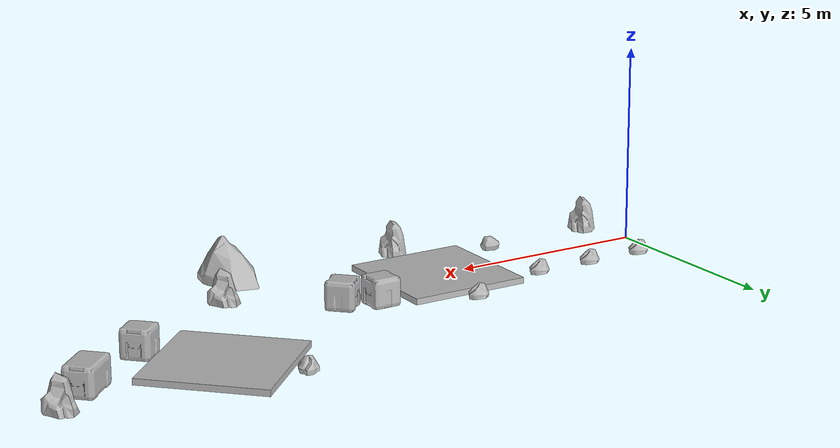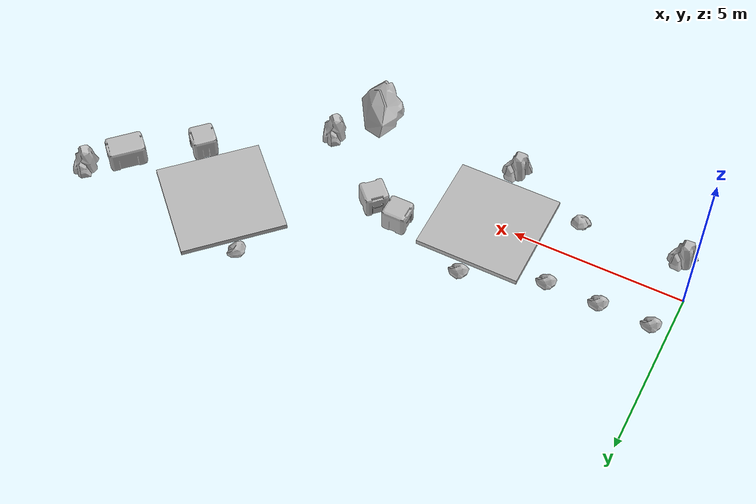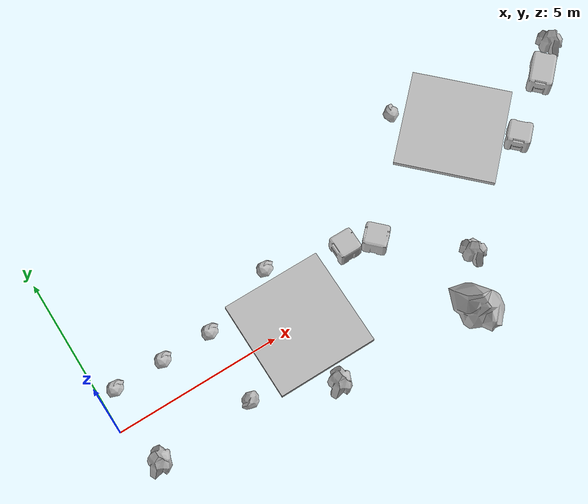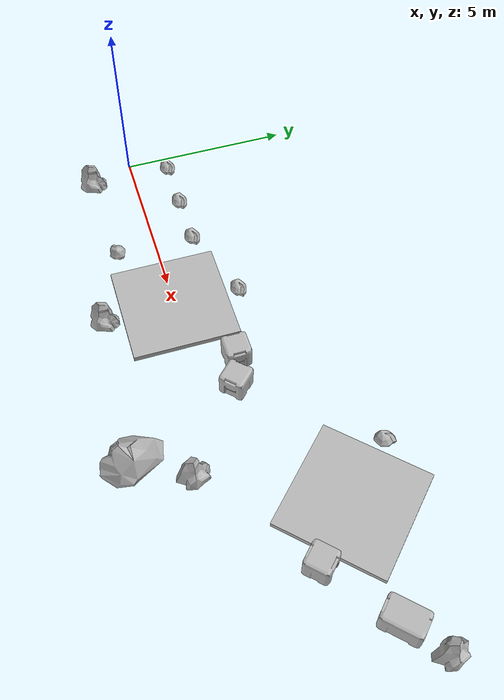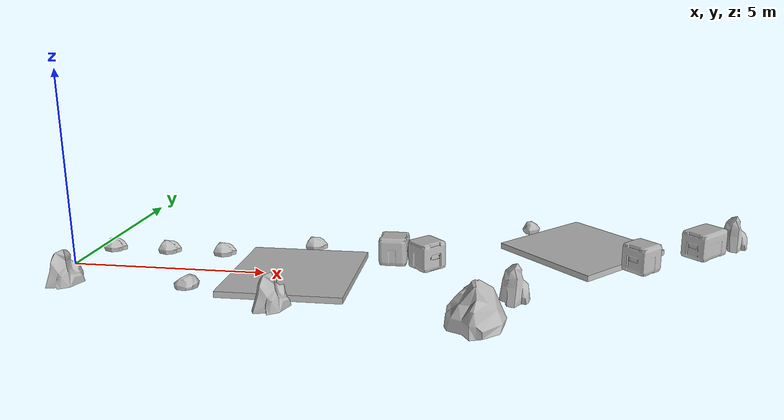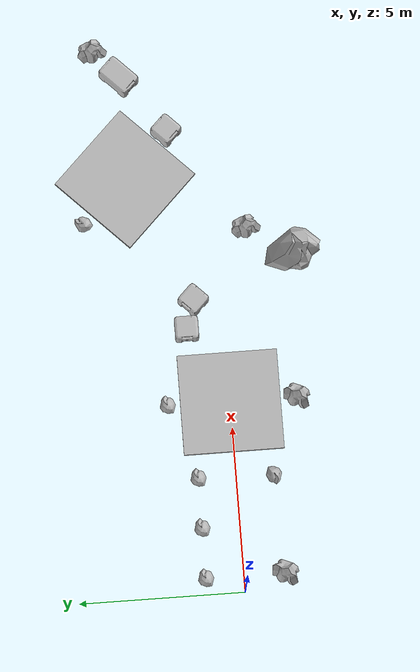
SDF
<sdf version="1.6">
 <world name="SRC_finals">
  <physics type="ode">
   <real_time_update_rate>1000.0</real_time_update_rate>
   <max_step_size>0.001</max_step_size>
   <real_time_factor>1</real_time_factor>
   <ode>
    <solver>
     <type>quick</type>
     <iters>150</iters>
     <precon_iters>0</precon_iters>
     <sor>1.400000</sor>
     <use_dynamic_moi_rescaling>1</use_dynamic_moi_rescaling>
    </solver>
    <constraints>
     <cfm>0.000000</cfm>
     <erp>0.800000</erp>
     <contact_max_correcting_vel>2000.000000</contact_max_correcting_vel>
     <contact_surface_layer>0.01000</contact_surface_layer>
    </constraints>
   </ode>
  </physics>
  <scene>
   <background>0.968627451 0.690196078 0.384313725 1.0</background>
   <grid>0</grid>
   <origin_visual>0</origin_visual>
  </scene>
  <light type="directional" name="sun">
   <pose>0 0 1000 -0.778302173166515 -0.9107552164665229 0</pose>
   <diffuse>0.8 0.8 0.8 1</diffuse>
   <specular>0.2 0.2 0.2 1</specular>
   <attenuation>
    <range>1000</range>
    <constant>0.9</constant>
    <linear>0.01</linear>
    <quadratic>0.001</quadratic>
   </attenuation>
   <direction>-0.5 0.1 -0.9</direction>
  </light>
  <include>
   <name>mars_rock_1_1</name>
   <pose>0.46200000000000024
      1.162
      0
      0
      0
      -2.4492935982947064e-16</pose>
   <uri>model://mars_rock_1</uri>
  </include>
  <include>
   <name>mars_rock_2_2</name>
   <pose>0.46199999999999986
      -1.262
      0
      0
      0
      3.141592653589793</pose>
   <uri>model://mars_rock_2</uri>
  </include>
  <plugin name="boxT1CP1" filename="libBoxContainsPlugin.so">
   <frequency>100</frequency>
   <entity>valkyrie</entity>
   <namespace>task1/checkpoint1</namespace>
   <pose>1.9859999999999998
        -0.5620000000000003
        2.5
        0
        0
        -1.5707963267948968</pose>
   <size>1 1 5</size>
  </plugin>
  <include>
   <name>mars_rock_1_3</name>
   <pose>1.9860000000000002
      1.1619999999999995
      0
      0
      0
      -2.4492935982947064e-16</pose>
   <uri>model://mars_rock_1</uri>
  </include>
  <include>
   <name>mars_rock_1_4</name>
   <pose>3.5100000000000002
      1.1619999999999995
      0
      0
      0
      -2.4492935982947064e-16</pose>
   <uri>model://mars_rock_1</uri>
  </include>
  <include>
   <name>mars_rock_1_5</name>
   <pose>3.5100000000000002
      -1.1620000000000008
      0
      0
      0
      3.141592653589793</pose>
   <uri>model://mars_rock_1</uri>
  </include>
  <include>
   <name>walkway_4</name>
   <pose>5.796
      -1.1198170331403398e-15
      -0.052151
      0
      0
      3.141592653589793</pose>
   <uri>model://walkway_finish_opposite</uri>
  </include>
  <plugin name="boxT1CP3" filename="libBoxContainsPlugin.so">
   <frequency>100</frequency>
   <entity>valkyrie</entity>
   <namespace>task1/checkpoint3</namespace>
   <pose>5.796
        -1.1198170331403398e-15
        2.5
        0
        0
        3.141592653589793</pose>
   <size>3.048 3.048 5</size>
  </plugin>
  <include>
   <name>mars_rock_1_6</name>
   <pose>5.796
      1.923999999999999
      0
      0
      0
      -2.449293598294706e-16</pose>
   <uri>model://mars_rock_1</uri>
  </include>
  <include>
   <name>mars_rock_2_7</name>
   <pose>5.796
      -2.024000000000001
      0
      0
      0
      3.141592653589793</pose>
   <uri>model://mars_rock_2</uri>
  </include>
  <include>
   <name>mars_crate_8</name>
   <pose>8.082
      1.1619999999999986
      0
      0
      0
      -2.4492935982947064e-16</pose>
   <uri>model://mars_crate</uri>
  </include>
  <include>
   <name>mars_crate_9</name>
   <pose>8.95920271247462
      0.8924427124746175
      0
      0
      0
      -0.7853981633974485</pose>
   <uri>model://mars_crate</uri>
  </include>
  <include>
   <name>mars_rock_3_10</name>
   <pose>10.476182193833502
      -2.3949182858335023
      0
      0
      0
      -2.356194490192345</pose>
   <uri>model://mars_rock_3</uri>
  </include>
  <include>
   <name>mars_rock_2_11</name>
   <pose>11.129548859649871
      -0.8930234825932757
      0
      0
      0
      -2.3561944901923453</pose>
   <uri>model://mars_rock_2</uri>
  </include>
  <include>
   <name>walkway_9</name>
   <pose>12.931256938113195
      2.6934221115848933
      -0.052151
      0
      0
      -2.3561944901923453</pose>
   <uri>model://walkway_finish_opposite</uri>
  </include>
  <plugin name="boxT2CP6" filename="libBoxContainsPlugin.so">
   <frequency>100</frequency>
   <entity>valkyrie</entity>
   <namespace>task2/checkpoint6</namespace>
   <pose>12.931256938113195
        2.6934221115848933
        2.5
        0
        0
        -2.3561944901923453</pose>
   <size>3.048 3.048 5</size>
  </plugin>
  <include>
   <name>mars_crate_12</name>
   <pose>14.291730385116113
      1.3329486645819755
      0
      0
      0
      -2.3561944901923453</pose>
   <uri>model://mars_crate</uri>
  </include>
  <include>
   <name>mars_rock_1_13</name>
   <pose>11.570783491110278
      4.053895558587811
      0
      0
      0
      0.785398163397448</pose>
   <uri>model://mars_rock_1</uri>
  </include>
  <include>
   <name>mars_rock_2_14</name>
   <pose>16.9643958554552
      3.417633684610991
      0
      0
      0
      -2.356194490192345</pose>
   <uri>model://mars_rock_2</uri>
  </include>
  <include>
   <name>mars_crate_long_15</name>
   <pose>16.08280340494306
      2.6586741621910583
      0
      0
      0
      -2.3561944901923453</pose>
   <uri>model://mars_crate_long</uri>
  </include>
  <plugin name="boxT3CP8" filename="libBoxContainsPlugin.so">
   <frequency>100</frequency>
   <entity>valkyrie</entity>
   <namespace>task3/checkpoint8</namespace>
   <pose>16.61084246486193
        4.848817809732563
        2.5
        0
        0
        2.356194490192345</pose>
   <size>3.048 3.048 5</size>
  </plugin>
  <plugin name="finals" filename="libFinalsPlugin.so">
   <task_1_timeout>180</task_1_timeout>
   <task_1_checkpoint_2_pose>1.9859999999999998
          -0.5620000000000003
          1.1
          0
          0
          -1.5707963267948968</task_1_checkpoint_2_pose>
   <task_1_checkpoint_3_pose>1.9859999999999998
          -0.5620000000000003
          1.1
          0
          0
          -1.5707963267948968</task_1_checkpoint_3_pose>
   <task_2_timeout>180</task_2_timeout>
   <task_2_checkpoint_1_pose>5.796
          -1.1198170331403398e-15
          1.1
          0
          0
          3.141592653589793</task_2_checkpoint_1_pose>
   <task_2_checkpoint_2_pose>7.32
          -1.3064532053303964e-15
          1.1
          0
          0
          -1.5707963267948968</task_2_checkpoint_2_pose>
   <task_2_checkpoint_3_pose>7.32
          -1.3064532053303964e-15
          1.1
          0
          0
          -1.5707963267948968</task_2_checkpoint_3_pose>
   <task_2_checkpoint_4_pose>7.32
          -1.3064532053303964e-15
          1.1
          0
          0
          -1.5707963267948968</task_2_checkpoint_4_pose>
   <task_2_checkpoint_5_pose>7.32
          -1.3064532053303964e-15
          1.1
          0
          0
          -1.5707963267948968</task_2_checkpoint_5_pose>
   <task_2_checkpoint_6_pose>7.32
          -1.3064532053303964e-15
          1.1
          0
          0
          -1.5707963267948968</task_2_checkpoint_6_pose>
   <task_3_timeout>180</task_3_timeout>
   <task_3_checkpoint_1_pose>12.931256938113195
          2.6934221115848933
          1.1
          0
          0
          -2.3561944901923453</task_3_checkpoint_1_pose>
   <task_3_checkpoint_2_pose>12.931256938113195
          2.6934221115848933
          1.1
          0
          0
          -2.3561944901923453</task_3_checkpoint_2_pose>
   <task_3_checkpoint_3_pose>12.931256938113195
          2.6934221115848933
          1.1
          0
          0
          -2.3561944901923453</task_3_checkpoint_3_pose>
   <task_3_checkpoint_4_pose>12.931256938113195
          2.6934221115848933
          1.1
          0
          0
          -2.3561944901923453</task_3_checkpoint_4_pose>
   <task_3_checkpoint_5_pose>12.931256938113195
          2.6934221115848933
          1.1
          0
          0
          -2.3561944901923453</task_3_checkpoint_5_pose>
   <task_3_checkpoint_6_pose>12.931256938113195
          2.6934221115848933
          1.1
          0
          0
          -2.3561944901923453</task_3_checkpoint_6_pose>
   <task_3_checkpoint_7_pose>12.931256938113195
          2.6934221115848933
          1.1
          0
          0
          -2.3561944901923453</task_3_checkpoint_7_pose>
   <task_3_checkpoint_8_pose>12.931256938113195
          2.6934221115848933
          1.1
          0
          0
          -2.3561944901923453</task_3_checkpoint_8_pose>
  </plugin>
 </world>
</sdf>

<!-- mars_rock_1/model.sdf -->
<sdf version="1.5">
  <model name="mars_rock_1">
    <static>true</static>
    <link name="link">
      <collision name="collision">
        <geometry>
          <mesh>
            <uri>model://mars_rock_1/meshes/mars_rock_1.obj</uri>
            <scale>0.03 0.03 0.03</scale>
          </mesh>
        </geometry>
      </collision>
      <visual name="visual">
        <geometry>
          <mesh>
            <uri>model://mars_rock_1/meshes/mars_rock_1.obj</uri>
            <scale>0.03 0.03 0.03</scale>
          </mesh>
        </geometry>
      </visual>
    </link>
  </model>
</sdf>

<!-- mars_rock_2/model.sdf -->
<sdf version="1.5">
  <model name="mars_rock_2">
    <static>true</static>
    <link name="link">
      <collision name="collision">
        <geometry>
          <mesh>
            <uri>model://mars_rock_2/meshes/mars_rock_2.obj</uri>
            <scale>0.03 0.03 0.03</scale>
          </mesh>
        </geometry>
      </collision>
      <visual name="visual">
        <geometry>
          <mesh>
            <uri>model://mars_rock_2/meshes/mars_rock_2.obj</uri>
            <scale>0.03 0.03 0.03</scale>
          </mesh>
        </geometry>
      </visual>
    </link>
  </model>
</sdf>

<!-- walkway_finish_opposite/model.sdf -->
<sdf version="1.5">
  <model name="walkway_finish_opposite">
    <static>true</static>
    <link name="link">
      <collision name="collision">
        <pose>0 0 0.076075 0 0 0</pose>
        <geometry>
          <box>
            <size>3.048 3.048 0.15215</size>
          </box>
        </geometry>
      </collision>

      <visual name="visual">
        <geometry>
          <mesh>
            <scale>0.001 0.001 0.001</scale>
            <uri>model://walkway_finish_opposite/meshes/walkway_finish_opposite.obj</uri>
          </mesh>
        </geometry>
      </visual>
    </link>
  </model>
</sdf>

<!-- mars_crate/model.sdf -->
<sdf version="1.5">
  <model name="mars_crate">
    <static>true</static>
    <link name="link">
      <collision name="collision">
        <geometry>
          <mesh>
            <uri>model://mars_crate/meshes/crate.obj</uri>
            <scale>0.03 0.03 0.03</scale>
          </mesh>
        </geometry>
      </collision>
      <visual name="visual">
        <geometry>
          <mesh>
            <uri>model://mars_crate/meshes/crate.obj</uri>
            <scale>0.03 0.03 0.03</scale>
          </mesh>
        </geometry>
      </visual>
    </link>
  </model>
</sdf>

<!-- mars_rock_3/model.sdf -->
<sdf version="1.5">
  <model name="mars_rock_3">
    <static>true</static>
    <link name="link">
      <collision name="collision">
        <geometry>
          <mesh>
            <uri>model://mars_rock_3/meshes/mars_rock_3.obj</uri>
            <scale>0.03 0.03 0.03</scale>
          </mesh>
        </geometry>
      </collision>
      <visual name="visual">
        <geometry>
          <mesh>
            <uri>model://mars_rock_3/meshes/mars_rock_3.obj</uri>
            <scale>0.03 0.03 0.03</scale>
          </mesh>
        </geometry>
      </visual>
    </link>
  </model>
</sdf>

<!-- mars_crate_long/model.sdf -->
<sdf version="1.5">
  <model name="mars_crate_long">
    <static>true</static>
    <link name="link">
      <collision name="collision">
        <geometry>
          <mesh>
            <uri>model://mars_crate_long/meshes/crate_long.obj</uri>
            <scale>0.03 0.03 0.03</scale>
          </mesh>
        </geometry>
      </collision>
      <visual name="visual">
        <geometry>
          <mesh>
            <uri>model://mars_crate_long/meshes/crate_long.obj</uri>
            <scale>0.03 0.03 0.03</scale>
          </mesh>
        </geometry>
      </visual>
    </link>
  </model>
</sdf>
